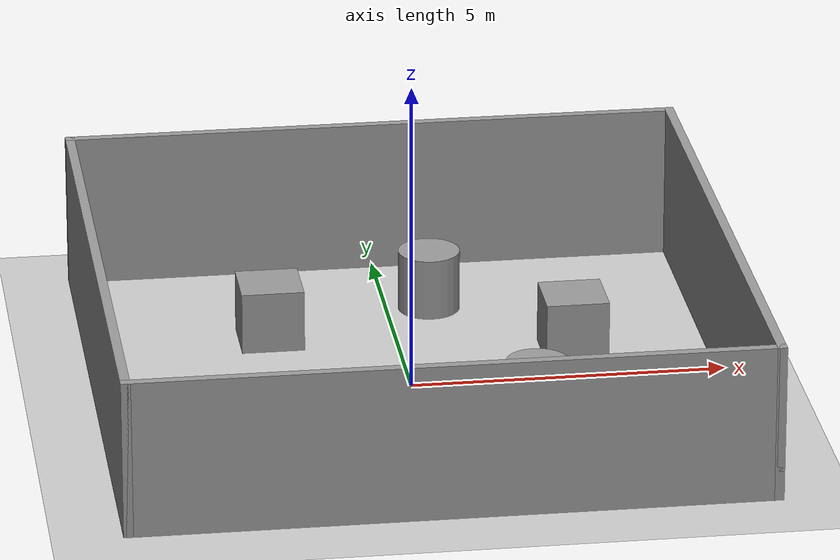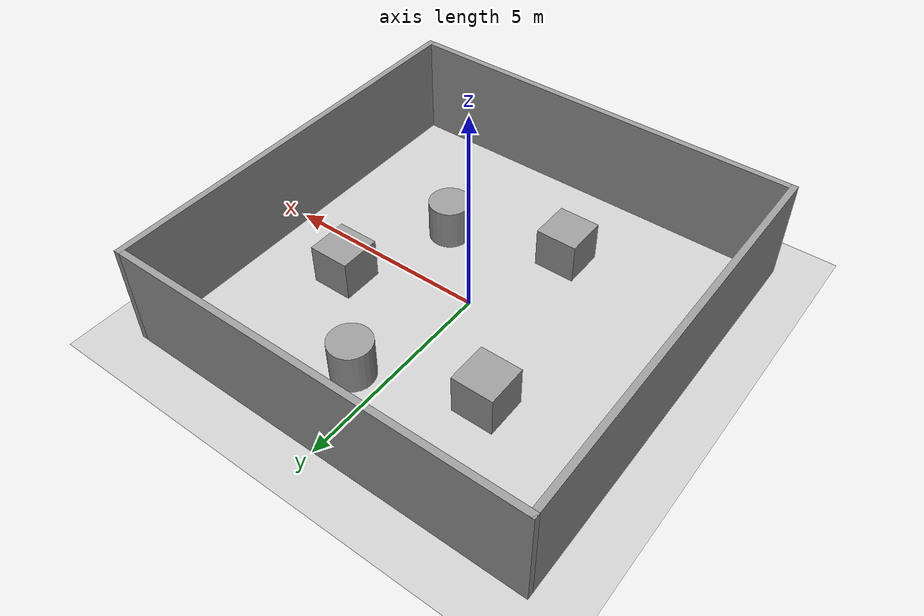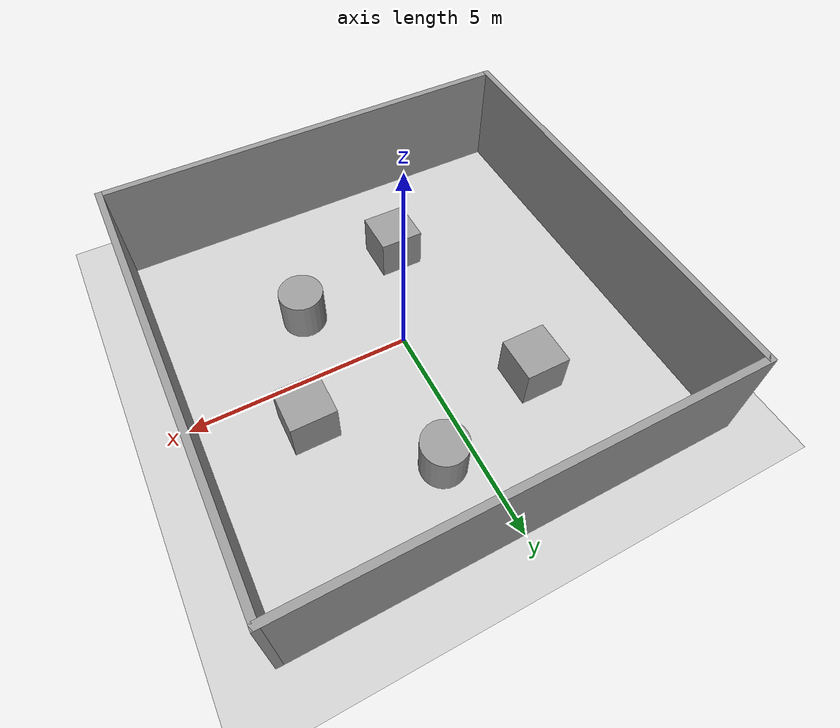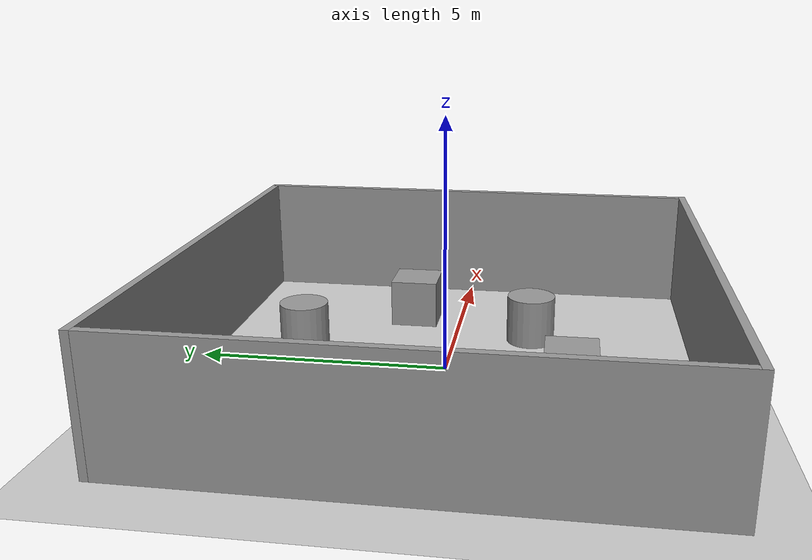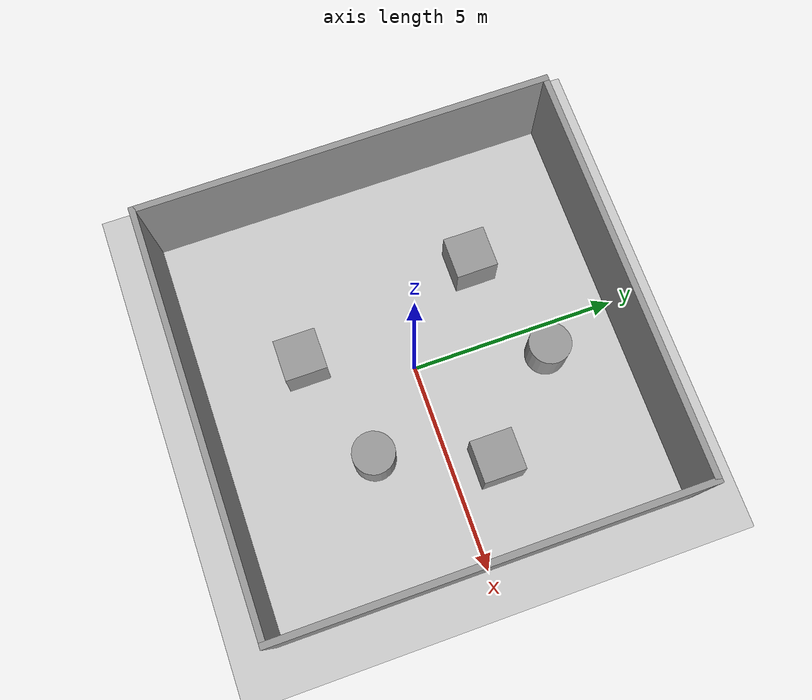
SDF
<sdf version="1.6">
 <world name="default">
  <light name="sun" type="directional">
   <pose>0 0 10 0 -0 0</pose>
   <diffuse>0.8 0.8 0.8 1</diffuse>
   <specular>0.1 0.1 0.1 1</specular>
   <attenuation>
    <range>1000</range>
    <constant>0.9</constant>
    <linear>0.01</linear>
    <quadratic>0.001</quadratic>
   </attenuation>
   <direction>-0.5 0.5 -1</direction>
  </light>
  <model name="ground_plane">
   <static>1</static>
   <link name="link">
    <collision name="collision">
     <geometry><plane><normal>0 0 1</normal><size>100 100</size></plane></geometry>
     <surface><friction><ode><mu>100</mu><mu2>50</mu2></ode></friction></surface>
    </collision>
    <visual name="visual">
     <cast_shadows>0</cast_shadows>
     <geometry><plane><normal>0 0 1</normal><size>100 100</size></plane></geometry>
     <material>
      <script><uri>file://media/materials/scripts/gazebo.material</uri><name>Gazebo/Grey</name></script>
     </material>
    </visual>
   </link>
  </model>
  <gravity>0 0 -9.8</gravity>
  <magnetic_field>6e-06 2.3e-05 -4.2e-05</magnetic_field>
  <atmosphere type="adiabatic"/>
  <physics name="default_physics" default="0" type="ode">
   <max_step_size>0.001</max_step_size>
   <real_time_factor>1</real_time_factor>
   <real_time_update_rate>1000</real_time_update_rate>
  </physics>
  <scene><ambient>0.4 0.4 0.4 1</ambient><background>0.7 0.7 0.7 1</background><shadows>1</shadows></scene>
  <spherical_coordinates>
   <surface_model>EARTH_WGS84</surface_model>
   <latitude_deg>0</latitude_deg>
   <longitude_deg>0</longitude_deg>
   <elevation>0</elevation>
   <heading_deg>0</heading_deg>
  </spherical_coordinates>
  <model name="Untitled">
   <link name="Wall_4">
    <collision name="Wall_4_Collision">
     <geometry><box><size>10 0.15 2.5</size></box></geometry>
     <pose>0 0 1.25 0 -0 0</pose>
    </collision>
    <visual name="Wall_4_Visual">
     <pose>0 0 1.25 0 -0 0</pose>
     <geometry><box><size>10 0.15 2.5</size></box></geometry>
     <material>
      <script><uri>file://media/materials/scripts/gazebo.material</uri><name>Gazebo/Grey</name></script>
      <ambient>1 1 1 1</ambient>
     </material>
    </visual>
    <pose>0 -4.925 0 0 -0 0</pose>
   </link>
   <link name="Wall_5">
    <collision name="Wall_5_Collision">
     <geometry><box><size>10 0.15 2.5</size></box></geometry>
     <pose>0 0 1.25 0 -0 0</pose>
    </collision>
    <visual name="Wall_5_Visual">
     <pose>0 0 1.25 0 -0 0</pose>
     <geometry><box><size>10 0.15 2.5</size></box></geometry>
     <material>
      <script><uri>file://media/materials/scripts/gazebo.material</uri><name>Gazebo/Grey</name></script>
      <ambient>1 1 1 1</ambient>
     </material>
    </visual>
    <pose>4.925 0 0 0 -0 1.5708</pose>
   </link>
   <link name="Wall_6">
    <collision name="Wall_6_Collision">
     <geometry><box><size>10 0.15 2.5</size></box></geometry>
     <pose>0 0 1.25 0 -0 0</pose>
    </collision>
    <visual name="Wall_6_Visual">
     <pose>0 0 1.25 0 -0 0</pose>
     <geometry><box><size>10 0.15 2.5</size></box></geometry>
     <material>
      <script><uri>file://media/materials/scripts/gazebo.material</uri><name>Gazebo/Grey</name></script>
      <ambient>1 1 1 1</ambient>
     </material>
    </visual>
    <pose>0 4.925 0 0 -0 3.14159</pose>
   </link>
   <link name="Wall_7">
    <collision name="Wall_7_Collision">
     <geometry><box><size>10 0.15 2.5</size></box></geometry>
     <pose>0 0 1.25 0 -0 0</pose>
    </collision>
    <visual name="Wall_7_Visual">
     <pose>0 0 1.25 0 -0 0</pose>
     <geometry><box><size>10 0.15 2.5</size></box></geometry>
     <material>
      <script><uri>file://media/materials/scripts/gazebo.material</uri><name>Gazebo/Grey</name></script>
      <ambient>1 1 1 1</ambient>
     </material>
    </visual>
    <pose>-4.925 0 0 0 0 -1.5708</pose>
   </link>
   <static>1</static>
  </model>
  <model name="unit_box_0">
   <pose>-2.00428 2.09601 0.499995 0 1e-05 0</pose>
   <link name="link">
    <inertial>
     <mass>1</mass>
     <inertia>
      <ixx>0.166667</ixx>
      <ixy>0</ixy>
      <ixz>0</ixz>
      <iyy>0.166667</iyy>
      <iyz>0</iyz>
      <izz>0.166667</izz>
     </inertia>
    </inertial>
    <collision name="collision"><geometry><box><size>1 1 1</size></box></geometry></collision>
    <visual name="visual">
     <geometry><box><size>1 1 1</size></box></geometry>
     <material>
      <script><name>Gazebo/Grey</name><uri>file://media/materials/scripts/gazebo.material</uri></script>
     </material>
    </visual>
   </link>
  </model>
  <model name="unit_box_1">
   <pose>-0.956702 -2.45126 0.499995 -1e-05 0 0</pose>
   <link name="link">
    <inertial>
     <mass>1</mass>
     <inertia>
      <ixx>0.166667</ixx>
      <ixy>0</ixy>
      <ixz>0</ixz>
      <iyy>0.166667</iyy>
      <iyz>0</iyz>
      <izz>0.166667</izz>
     </inertia>
    </inertial>
    <collision name="collision"><geometry><box><size>1 1 1</size></box></geometry></collision>
    <visual name="visual">
     <geometry><box><size>1 1 1</size></box></geometry>
     <material>
      <script><name>Gazebo/Grey</name><uri>file://media/materials/scripts/gazebo.material</uri></script>
     </material>
    </visual>
   </link>
  </model>
  <model name="unit_box_2">
   <pose>2.72843 1.0082 0.499995 0 1e-05 0</pose>
   <link name="link">
    <inertial>
     <mass>1</mass>
     <inertia>
      <ixx>0.166667</ixx>
      <ixy>0</ixy>
      <ixz>0</ixz>
      <iyy>0.166667</iyy>
      <iyz>0</iyz>
      <izz>0.166667</izz>
     </inertia>
    </inertial>
    <collision name="collision"><geometry><box><size>1 1 1</size></box></geometry></collision>
    <visual name="visual">
     <geometry><box><size>1 1 1</size></box></geometry>
     <material>
      <script><name>Gazebo/Grey</name><uri>file://media/materials/scripts/gazebo.material</uri></script>
     </material>
    </visual>
   </link>
  </model>
  <model name="unit_cylinder_0">
   <pose>1.75446 -1.59536 0.499993 -3e-06 -4e-06 -0</pose>
   <link name="link">
    <inertial>
     <mass>1</mass>
     <inertia><ixx>0.145833</ixx><ixy>0</ixy><ixz>0</ixz><iyy>0.145833</iyy><iyz>0</iyz><izz>0.125</izz></inertia>
    </inertial>
    <collision name="collision">
     <geometry><cylinder><radius>0.5</radius><length>1</length></cylinder></geometry>
    </collision>
    <visual name="visual">
     <geometry><cylinder><radius>0.5</radius><length>1</length></cylinder></geometry>
     <material>
      <script><name>Gazebo/Grey</name><uri>file://media/materials/scripts/gazebo.material</uri></script>
     </material>
    </visual>
   </link>
  </model>
  <model name="unit_cylinder_1">
   <pose>0.691459 3.05606 0.499997 3e-06 4e-06 -0</pose>
   <link name="link">
    <inertial>
     <mass>1</mass>
     <inertia><ixx>0.145833</ixx><ixy>0</ixy><ixz>0</ixz><iyy>0.145833</iyy><iyz>0</iyz><izz>0.125</izz></inertia>
    </inertial>
    <collision name="collision">
     <geometry><cylinder><radius>0.5</radius><length>1</length></cylinder></geometry>
    </collision>
    <visual name="visual">
     <geometry><cylinder><radius>0.5</radius><length>1</length></cylinder></geometry>
     <material>
      <script><name>Gazebo/Grey</name><uri>file://media/materials/scripts/gazebo.material</uri></script>
     </material>
    </visual>
   </link>
  </model>
 </world>
</sdf>
